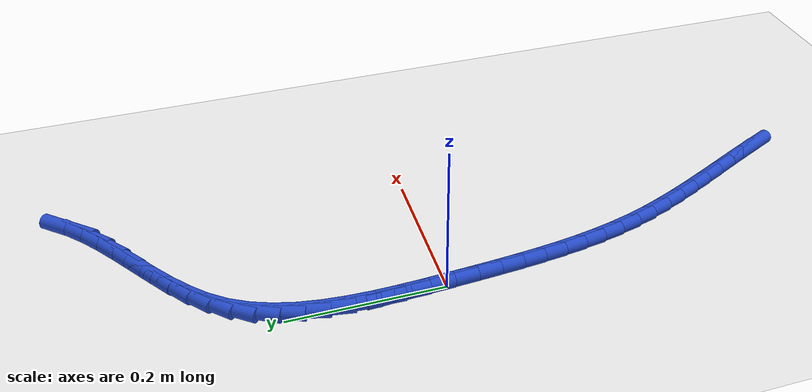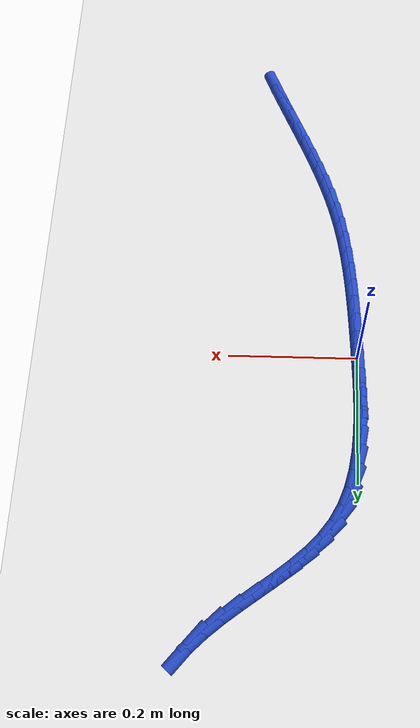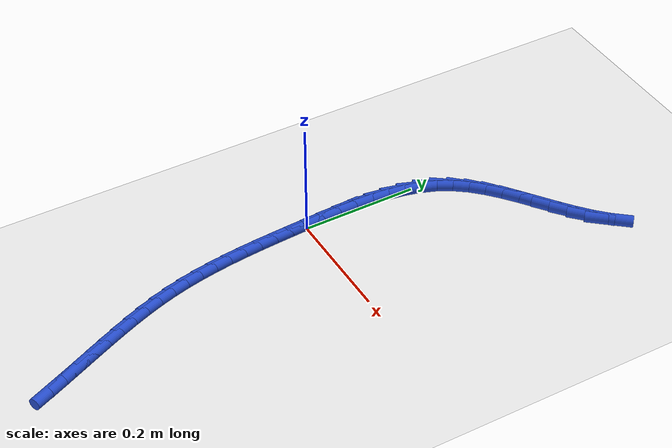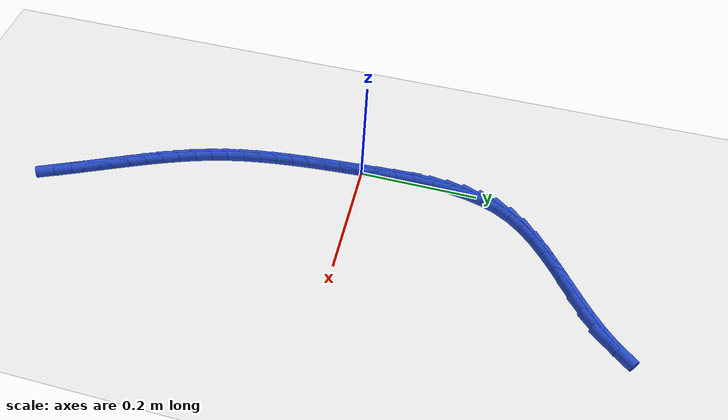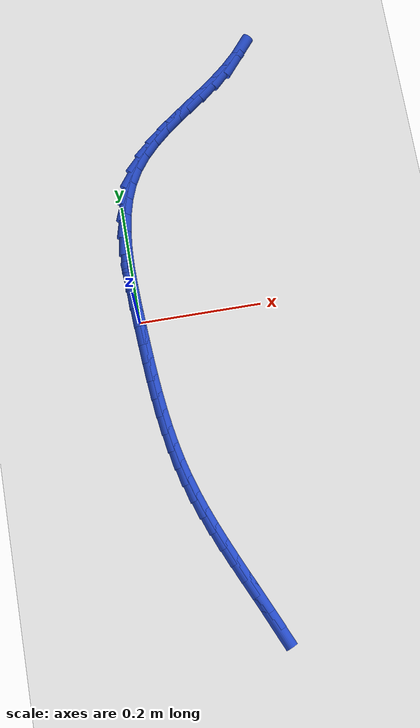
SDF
<sdf version="1.6">
 <world name="default">
  <model name="ground_plane">
   <static>1</static>
   <link name="link">
    <collision name="collision">
     <geometry><plane><normal>0 0 1</normal><size>100 100</size></plane></geometry>
     <surface><friction><ode><mu>100</mu><mu2>50</mu2></ode></friction></surface>
    </collision>
    <visual name="visual">
     <cast_shadows>0</cast_shadows>
     <geometry><plane><normal>0 0 1</normal><size>100 100</size></plane></geometry>
     <material>
      <script><uri>file://media/materials/scripts/gazebo.material</uri><name>Gazebo/WhiteGlow</name></script>
     </material>
    </visual>
   </link>
  </model>
  <model name="line">
   <link name="link_0">
    <pose>-1.5178830414797062e-17 -4.163336342344337e-17 0.01 0 1.57 -1.5154828405450358</pose>
    <collision name="collision">
     <geometry><cylinder><radius>0.01</radius><length>0.08</length></cylinder></geometry>
    </collision>
    <visual name="visual">
     <material>
      <script><name>Gazebo/Blue</name><uri>file://media/materials/scripts/gazebo.material</uri></script>
     </material>
     <geometry><cylinder><radius>0.01</radius><length>0.08</length></cylinder></geometry>
    </visual>
   </link>
   <link name="link_1">
    <pose>-0.0017155117721361344 0.030982712327724496 0.01 0 1.57 -1.5299890894671335</pose>
    <collision name="collision">
     <geometry><cylinder><radius>0.01</radius><length>0.08</length></cylinder></geometry>
    </collision>
    <visual name="visual">
     <material>
      <script><name>Gazebo/Blue</name><uri>file://media/materials/scripts/gazebo.material</uri></script>
     </material>
     <geometry><cylinder><radius>0.01</radius><length>0.08</length></cylinder></geometry>
    </visual>
   </link>
   <link name="link_2">
    <pose>-0.0029866828701591882 0.06211604810824366 0.01 0 1.57 -1.5573828331246513</pose>
    <collision name="collision">
     <geometry><cylinder><radius>0.01</radius><length>0.08</length></cylinder></geometry>
    </collision>
    <visual name="visual">
     <material>
      <script><name>Gazebo/Blue</name><uri>file://media/materials/scripts/gazebo.material</uri></script>
     </material>
     <geometry><cylinder><radius>0.01</radius><length>0.08</length></cylinder></geometry>
    </visual>
   </link>
   <link name="link_3">
    <pose>-0.0034025203476769107 0.09311561824485003 0.01 0 1.57 1.5429928417432854</pose>
    <collision name="collision">
     <geometry><cylinder><radius>0.01</radius><length>0.08</length></cylinder></geometry>
    </collision>
    <visual name="visual">
     <material>
      <script><name>Gazebo/Blue</name><uri>file://media/materials/scripts/gazebo.material</uri></script>
     </material>
     <geometry><cylinder><radius>0.01</radius><length>0.08</length></cylinder></geometry>
    </visual>
   </link>
   <link name="link_4">
    <pose>-0.0025520312582970354 0.12369703364083609 0.01 0 1.57 1.4863954331858804</pose>
    <collision name="collision">
     <geometry><cylinder><radius>0.01</radius><length>0.08</length></cylinder></geometry>
    </collision>
    <visual name="visual">
     <material>
      <script><name>Gazebo/Blue</name><uri>file://media/materials/scripts/gazebo.material</uri></script>
     </material>
     <geometry><cylinder><radius>0.01</radius><length>0.08</length></cylinder></geometry>
    </visual>
   </link>
   <link name="link_5">
    <pose>-2.4222655627299805e-05 0.15357590519949446 0.01 0 1.57 1.41236344065607</pose>
    <collision name="collision">
     <geometry><cylinder><radius>0.01</radius><length>0.08</length></cylinder></geometry>
    </collision>
    <visual name="visual">
     <material>
      <script><name>Gazebo/Blue</name><uri>file://media/materials/scripts/gazebo.material</uri></script>
     </material>
     <geometry><cylinder><radius>0.01</radius><length>0.08</length></cylinder></geometry>
    </visual>
   </link>
   <link name="link_6">
    <pose>0.004591898406724573 0.18246784382411768 0.01 0 1.57 1.31866553774087</pose>
    <collision name="collision">
     <geometry><cylinder><radius>0.01</radius><length>0.08</length></cylinder></geometry>
    </collision>
    <visual name="visual">
     <material>
      <script><name>Gazebo/Blue</name><uri>file://media/materials/scripts/gazebo.material</uri></script>
     </material>
     <geometry><cylinder><radius>0.01</radius><length>0.08</length></cylinder></geometry>
    </visual>
   </link>
   <link name="link_7">
    <pose>0.01170732487515084 0.21008846041799822 0.01 0 1.57 1.2035970532807585</pose>
    <collision name="collision">
     <geometry><cylinder><radius>0.01</radius><length>0.08</length></cylinder></geometry>
    </collision>
    <visual name="visual">
     <material>
      <script><name>Gazebo/Blue</name><uri>file://media/materials/scripts/gazebo.material</uri></script>
     </material>
     <geometry><cylinder><radius>0.01</radius><length>0.08</length></cylinder></geometry>
    </visual>
   </link>
   <link name="link_8">
    <pose>0.021733049696043765 0.23615336588442862 0.01 0 1.57 1.0672150120510964</pose>
    <collision name="collision">
     <geometry><cylinder><radius>0.01</radius><length>0.08</length></cylinder></geometry>
    </collision>
    <visual name="visual">
     <material>
      <script><name>Gazebo/Blue</name><uri>file://media/materials/scripts/gazebo.material</uri></script>
     </material>
     <geometry><cylinder><radius>0.01</radius><length>0.08</length></cylinder></geometry>
    </visual>
   </link>
   <link name="link_9">
    <pose>0.03508001064080044 0.26037820624782937 0.01 0 1.57 0.9222931940276594</pose>
    <collision name="collision">
     <geometry><cylinder><radius>0.01</radius><length>0.08</length></cylinder></geometry>
    </collision>
    <visual name="visual">
     <material>
      <script><name>Gazebo/Blue</name><uri>file://media/materials/scripts/gazebo.material</uri></script>
     </material>
     <geometry><cylinder><radius>0.01</radius><length>0.08</length></cylinder></geometry>
    </visual>
   </link>
   <link name="link_10">
    <pose>0.05193623822241579 0.2826205170658451 0.01 0 1.57 0.8041674025619753</pose>
    <collision name="collision">
     <geometry><cylinder><radius>0.01</radius><length>0.08</length></cylinder></geometry>
    </collision>
    <visual name="visual">
     <material>
      <script><name>Gazebo/Blue</name><uri>file://media/materials/scripts/gazebo.material</uri></script>
     </material>
     <geometry><cylinder><radius>0.01</radius><length>0.08</length></cylinder></geometry>
    </visual>
   </link>
   <link name="link_11">
    <pose>0.07175976107626077 0.30320250977258817 0.01 0 1.57 0.7188729163100174</pose>
    <collision name="collision">
     <geometry><cylinder><radius>0.01</radius><length>0.08</length></cylinder></geometry>
    </collision>
    <visual name="visual">
     <material>
      <script><name>Gazebo/Blue</name><uri>file://media/materials/scripts/gazebo.material</uri></script>
     </material>
     <geometry><cylinder><radius>0.01</radius><length>0.08</length></cylinder></geometry>
    </visual>
   </link>
   <link name="link_12">
    <pose>0.09385940275769401 0.3225413709021713 0.01 0 1.57 0.6634476932160228</pose>
    <collision name="collision">
     <geometry><cylinder><radius>0.01</radius><length>0.08</length></cylinder></geometry>
    </collision>
    <visual name="visual">
     <material>
      <script><name>Gazebo/Blue</name><uri>file://media/materials/scripts/gazebo.material</uri></script>
     </material>
     <geometry><cylinder><radius>0.01</radius><length>0.08</length></cylinder></geometry>
    </visual>
   </link>
   <link name="link_13">
    <pose>0.11754398682207418 0.3410542869887078 0.01 0 1.57 0.6348630785416622</pose>
    <collision name="collision">
     <geometry><cylinder><radius>0.01</radius><length>0.08</length></cylinder></geometry>
    </collision>
    <visual name="visual">
     <material>
      <script><name>Gazebo/Blue</name><uri>file://media/materials/scripts/gazebo.material</uri></script>
     </material>
     <geometry><cylinder><radius>0.01</radius><length>0.08</length></cylinder></geometry>
    </visual>
   </link>
   <link name="link_14">
    <pose>0.14212233682475983 0.35915844456631046 0.01 0 1.57 0.6311698076487244</pose>
    <collision name="collision">
     <geometry><cylinder><radius>0.01</radius><length>0.08</length></cylinder></geometry>
    </collision>
    <visual name="visual">
     <material>
      <script><name>Gazebo/Blue</name><uri>file://media/materials/scripts/gazebo.material</uri></script>
     </material>
     <geometry><cylinder><radius>0.01</radius><length>0.08</length></cylinder></geometry>
    </visual>
   </link>
   <link name="link_15">
    <pose>0.16690327632110977 0.37727103016909247 0.01 0 1.57 0.6518508919850909</pose>
    <collision name="collision">
     <geometry><cylinder><radius>0.01</radius><length>0.08</length></cylinder></geometry>
    </collision>
    <visual name="visual">
     <material>
      <script><name>Gazebo/Blue</name><uri>file://media/materials/scripts/gazebo.material</uri></script>
     </material>
     <geometry><cylinder><radius>0.01</radius><length>0.08</length></cylinder></geometry>
    </visual>
   </link>
   <link name="link_16">
    <pose>0.19119562886648253 0.3958092303311668 0.01 0 1.57 0.6978075429111191</pose>
    <collision name="collision">
     <geometry><cylinder><radius>0.01</radius><length>0.08</length></cylinder></geometry>
    </collision>
    <visual name="visual">
     <material>
      <script><name>Gazebo/Blue</name><uri>file://media/materials/scripts/gazebo.material</uri></script>
     </material>
     <geometry><cylinder><radius>0.01</radius><length>0.08</length></cylinder></geometry>
    </visual>
   </link>
   <link name="link_17">
    <pose>0.21430821801623676 0.4151902315866464 0.01 0 1.57 0.7710576328956202</pose>
    <collision name="collision">
     <geometry><cylinder><radius>0.01</radius><length>0.08</length></cylinder></geometry>
    </collision>
    <visual name="visual">
     <material>
      <script><name>Gazebo/Blue</name><uri>file://media/materials/scripts/gazebo.material</uri></script>
     </material>
     <geometry><cylinder><radius>0.01</radius><length>0.08</length></cylinder></geometry>
    </visual>
   </link>
   <link name="link_18">
    <pose>0.23554986732573116 0.4358312204696444 0.01 0 1.57 0.8739182883156523</pose>
    <collision name="collision">
     <geometry><cylinder><radius>0.01</radius><length>0.08</length></cylinder></geometry>
    </collision>
    <visual name="visual">
     <material>
      <script><name>Gazebo/Blue</name><uri>file://media/materials/scripts/gazebo.material</uri></script>
     </material>
     <geometry><cylinder><radius>0.01</radius><length>0.08</length></cylinder></geometry>
    </visual>
   </link>
   <link name="link_222">
    <pose>0.13563625330066476 -0.5037758845922247 0.01 0 1.57 -1.1507533737974787</pose>
    <collision name="collision">
     <geometry><cylinder><radius>0.01</radius><length>0.08</length></cylinder></geometry>
    </collision>
    <visual name="visual">
     <material>
      <script><name>Gazebo/Blue</name><uri>file://media/materials/scripts/gazebo.material</uri></script>
     </material>
     <geometry><cylinder><radius>0.01</radius><length>0.08</length></cylinder></geometry>
    </visual>
   </link>
   <link name="link_223">
    <pose>0.12315057019967657 -0.47582019647725166 0.01 0 1.57 -1.1418476651262872</pose>
    <collision name="collision">
     <geometry><cylinder><radius>0.01</radius><length>0.08</length></cylinder></geometry>
    </collision>
    <visual name="visual">
     <material>
      <script><name>Gazebo/Blue</name><uri>file://media/materials/scripts/gazebo.material</uri></script>
     </material>
     <geometry><cylinder><radius>0.01</radius><length>0.08</length></cylinder></geometry>
    </visual>
   </link>
   <link name="link_224">
    <pose>0.11058437781891671 -0.4483440506780052 0.01 0 1.57 -1.139326663262765</pose>
    <collision name="collision">
     <geometry><cylinder><radius>0.01</radius><length>0.08</length></cylinder></geometry>
    </collision>
    <visual name="visual">
     <material>
      <script><name>Gazebo/Blue</name><uri>file://media/materials/scripts/gazebo.material</uri></script>
     </material>
     <geometry><cylinder><radius>0.01</radius><length>0.08</length></cylinder></geometry>
    </visual>
   </link>
   <link name="link_225">
    <pose>0.09810694458395405 -0.4212428214419627 0.01 0 1.57 -1.1434480884690117</pose>
    <collision name="collision">
     <geometry><cylinder><radius>0.01</radius><length>0.08</length></cylinder></geometry>
    </collision>
    <visual name="visual">
     <material>
      <script><name>Gazebo/Blue</name><uri>file://media/materials/scripts/gazebo.material</uri></script>
     </material>
     <geometry><cylinder><radius>0.01</radius><length>0.08</length></cylinder></geometry>
    </visual>
   </link>
   <link name="link_226">
    <pose>0.0858876625689486 -0.3944117524079095 0.01 0 1.57 -1.1544420888316695</pose>
    <collision name="collision">
     <geometry><cylinder><radius>0.01</radius><length>0.08</length></cylinder></geometry>
    </collision>
    <visual name="visual">
     <material>
      <script><name>Gazebo/Blue</name><uri>file://media/materials/scripts/gazebo.material</uri></script>
     </material>
     <geometry><cylinder><radius>0.01</radius><length>0.08</length></cylinder></geometry>
    </visual>
   </link>
   <link name="link_227">
    <pose>0.07409592384806044 -0.3677460872146315 0.01 0 1.57 -1.1725072684560742</pose>
    <collision name="collision">
     <geometry><cylinder><radius>0.01</radius><length>0.08</length></cylinder></geometry>
    </collision>
    <visual name="visual">
     <material>
      <script><name>Gazebo/Blue</name><uri>file://media/materials/scripts/gazebo.material</uri></script>
     </material>
     <geometry><cylinder><radius>0.01</radius><length>0.08</length></cylinder></geometry>
    </visual>
   </link>
   <link name="link_228">
    <pose>0.06290112049544963 -0.34114106950091405 0.01 0 1.57 -1.1977904855469206</pose>
    <collision name="collision">
     <geometry><cylinder><radius>0.01</radius><length>0.08</length></cylinder></geometry>
    </collision>
    <visual name="visual">
     <material>
      <script><name>Gazebo/Blue</name><uri>file://media/materials/scripts/gazebo.material</uri></script>
     </material>
     <geometry><cylinder><radius>0.01</radius><length>0.08</length></cylinder></geometry>
    </visual>
   </link>
   <link name="link_229">
    <pose>0.05247264458527621 -0.3144919429055427 0.01 0 1.57 -1.2303546749473184</pose>
    <collision name="collision">
     <geometry><cylinder><radius>0.01</radius><length>0.08</length></cylinder></geometry>
    </collision>
    <visual name="visual">
     <material>
      <script><name>Gazebo/Blue</name><uri>file://media/materials/scripts/gazebo.material</uri></script>
     </material>
     <geometry><cylinder><radius>0.01</radius><length>0.08</length></cylinder></geometry>
    </visual>
   </link>
   <link name="link_230">
    <pose>0.04297988819170002 -0.28769395106730233 0.01 0 1.57 -1.2701351917682062</pose>
    <collision name="collision">
     <geometry><cylinder><radius>0.01</radius><length>0.08</length></cylinder></geometry>
    </collision>
    <visual name="visual">
     <material>
      <script><name>Gazebo/Blue</name><uri>file://media/materials/scripts/gazebo.material</uri></script>
     </material>
     <geometry><cylinder><radius>0.01</radius><length>0.08</length></cylinder></geometry>
    </visual>
   </link>
   <link name="link_231">
    <pose>0.03459224338888163 -0.26064233762498 0.01 0 1.57 -1.315339022457862</pose>
    <collision name="collision">
     <geometry><cylinder><radius>0.01</radius><length>0.08</length></cylinder></geometry>
    </collision>
    <visual name="visual">
     <material>
      <script><name>Gazebo/Blue</name><uri>file://media/materials/scripts/gazebo.material</uri></script>
     </material>
     <geometry><cylinder><radius>0.01</radius><length>0.08</length></cylinder></geometry>
    </visual>
   </link>
   <link name="link_232">
    <pose>0.027437190178689425 -0.23324547247599586 0.01 0 1.57 -1.3580018099577724</pose>
    <collision name="collision">
     <geometry><cylinder><radius>0.01</radius><length>0.08</length></cylinder></geometry>
    </collision>
    <visual name="visual">
     <material>
      <script><name>Gazebo/Blue</name><uri>file://media/materials/scripts/gazebo.material</uri></script>
     </material>
     <geometry><cylinder><radius>0.01</radius><length>0.08</length></cylinder></geometry>
    </visual>
   </link>
   <link name="link_233">
    <pose>0.021437149248220086 -0.20547594714782055 0.01 0 1.57 -1.3955185776639765</pose>
    <collision name="collision">
     <geometry><cylinder><radius>0.01</radius><length>0.08</length></cylinder></geometry>
    </collision>
    <visual name="visual">
     <material>
      <script><name>Gazebo/Blue</name><uri>file://media/materials/scripts/gazebo.material</uri></script>
     </material>
     <geometry><cylinder><radius>0.01</radius><length>0.08</length></cylinder></geometry>
    </visual>
   </link>
   <link name="link_234">
    <pose>0.016451926089915695 -0.17732596334691647 0.01 0 1.57 -1.4277413658867009</pose>
    <collision name="collision">
     <geometry><cylinder><radius>0.01</radius><length>0.08</length></cylinder></geometry>
    </collision>
    <visual name="visual">
     <material>
      <script><name>Gazebo/Blue</name><uri>file://media/materials/scripts/gazebo.material</uri></script>
     </material>
     <geometry><cylinder><radius>0.01</radius><length>0.08</length></cylinder></geometry>
    </visual>
   </link>
   <link name="link_235">
    <pose>0.012341310697427088 -0.14878772763374454 0.01 0 1.57 -1.4546358951713545</pose>
    <collision name="collision">
     <geometry><cylinder><radius>0.01</radius><length>0.08</length></cylinder></geometry>
    </collision>
    <visual name="visual">
     <material>
      <script><name>Gazebo/Blue</name><uri>file://media/materials/scripts/gazebo.material</uri></script>
     </material>
     <geometry><cylinder><radius>0.01</radius><length>0.08</length></cylinder></geometry>
    </visual>
   </link>
   <link name="link_236">
    <pose>0.008965093064405091 -0.11985344656876575 0.01 0 1.57 -1.476252577138226</pose>
    <collision name="collision">
     <geometry><cylinder><radius>0.01</radius><length>0.08</length></cylinder></geometry>
    </collision>
    <visual name="visual">
     <material>
      <script><name>Gazebo/Blue</name><uri>file://media/materials/scripts/gazebo.material</uri></script>
     </material>
     <geometry><cylinder><radius>0.01</radius><length>0.08</length></cylinder></geometry>
    </visual>
   </link>
   <link name="link_237">
    <pose>0.006183063184500552 -0.09051532671244097 0.01 0 1.57 -1.4927009745757363</pose>
    <collision name="collision">
     <geometry><cylinder><radius>0.01</radius><length>0.08</length></cylinder></geometry>
    </collision>
    <visual name="visual">
     <material>
      <script><name>Gazebo/Blue</name><uri>file://media/materials/scripts/gazebo.material</uri></script>
     </material>
     <geometry><cylinder><radius>0.01</radius><length>0.08</length></cylinder></geometry>
    </visual>
   </link>
   <link name="link_238">
    <pose>0.0038550110513642473 -0.06076557462523049 0.01 0 1.57 -1.5041289705441532</pose>
    <collision name="collision">
     <geometry><cylinder><radius>0.01</radius><length>0.08</length></cylinder></geometry>
    </collision>
    <visual name="visual">
     <material>
      <script><name>Gazebo/Blue</name><uri>file://media/materials/scripts/gazebo.material</uri></script>
     </material>
     <geometry><cylinder><radius>0.01</radius><length>0.08</length></cylinder></geometry>
    </visual>
   </link>
   <link name="link_239">
    <pose>0.0018407266586471338 -0.030596396867596777 0.01 0 1.57 -1.5107072027666484</pose>
    <collision name="collision">
     <geometry><cylinder><radius>0.01</radius><length>0.08</length></cylinder></geometry>
    </collision>
    <visual name="visual">
     <material>
      <script><name>Gazebo/Blue</name><uri>file://media/materials/scripts/gazebo.material</uri></script>
     </material>
     <geometry><cylinder><radius>0.01</radius><length>0.08</length></cylinder></geometry>
    </visual>
   </link>
   <link name="link_240">
    <pose>-1.7780915628762273e-17 -6.938893903907228e-18 0.01 0 1.57 -1.5126185196897468</pose>
    <collision name="collision">
     <geometry><cylinder><radius>0.01</radius><length>0.08</length></cylinder></geometry>
    </collision>
    <visual name="visual">
     <material>
      <script><name>Gazebo/Blue</name><uri>file://media/materials/scripts/gazebo.material</uri></script>
     </material>
     <geometry><cylinder><radius>0.01</radius><length>0.08</length></cylinder></geometry>
    </visual>
   </link>
   <link name="link_241">
    <pose>-0.0018073789309263695 0.031031409417098844 0.01 0 1.57 -1.510051804507564</pose>
    <collision name="collision">
     <geometry><cylinder><radius>0.01</radius><length>0.08</length></cylinder></geometry>
    </collision>
    <visual name="visual">
     <material>
      <script><name>Gazebo/Blue</name><uri>file://media/materials/scripts/gazebo.material</uri></script>
     </material>
     <geometry><cylinder><radius>0.01</radius><length>0.08</length></cylinder></geometry>
    </visual>
   </link>
   <link name="link_242">
    <pose>-0.003721620140481085 0.06250562482323883 0.01 0 1.57 -1.5113259724133947</pose>
    <collision name="collision">
     <geometry><cylinder><radius>0.01</radius><length>0.08</length></cylinder></geometry>
    </collision>
    <visual name="visual">
     <material>
      <script><name>Gazebo/Blue</name><uri>file://media/materials/scripts/gazebo.material</uri></script>
     </material>
     <geometry><cylinder><radius>0.01</radius><length>0.08</length></cylinder></geometry>
    </visual>
   </link>
  </model>
 </world>
</sdf>
